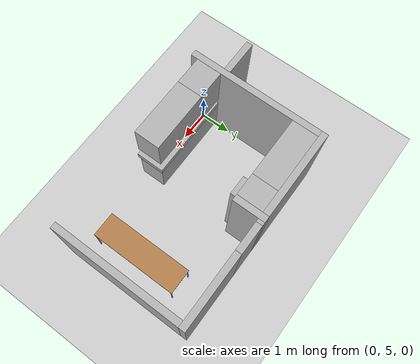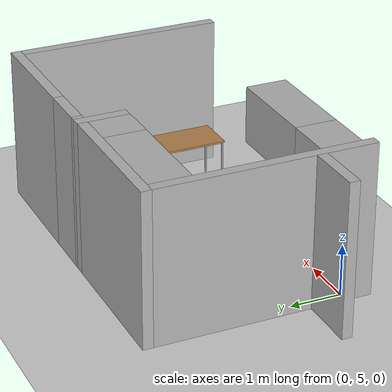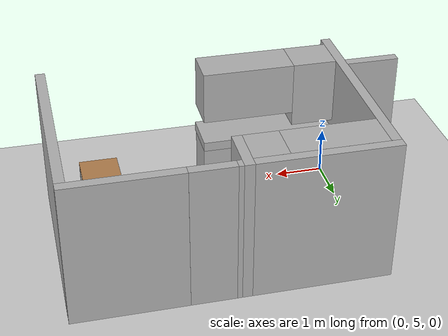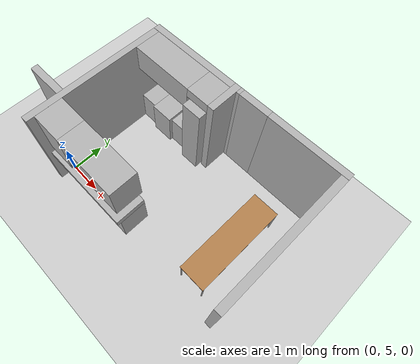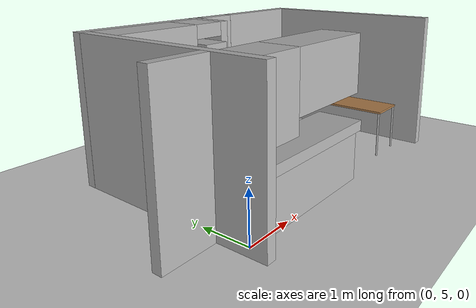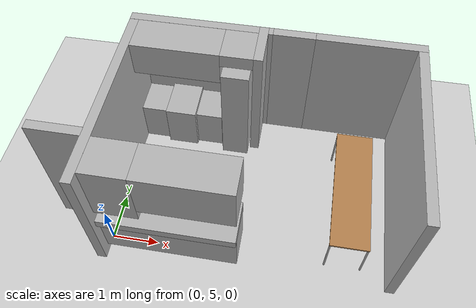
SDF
<sdf version="1.6">
 <world name="default">
  <model name="ground_plane">
   <static>1</static>
   <link name="link">
    <collision name="collision">
     <geometry><plane><normal>0 0 1</normal><size>100 100</size></plane></geometry>
     <surface><friction><ode><mu>100</mu><mu2>50</mu2></ode></friction></surface>
    </collision>
    <visual name="visual">
     <cast_shadows>0</cast_shadows>
     <geometry><plane><normal>0 0 1</normal><size>100 100</size></plane></geometry>
     <material>
      <script><uri>file://media/materials/scripts/gazebo.material</uri><name>Gazebo/Grey</name></script>
     </material>
    </visual>
   </link>
  </model>
  <model name="sean_apartment_4.0y_wall_0">
   <link name="link">
    <inertial>
     <mass>1</mass>
     <inertia>
      <ixx>0.166667</ixx>
      <ixy>0</ixy>
      <ixz>0</ixz>
      <iyy>0.166667</iyy>
      <iyz>0</iyz>
      <izz>0.166667</izz>
     </inertia>
    </inertial>
    <visual name="visual">
     <geometry><box><size>0.2 4 3</size></box></geometry>
     <material>
      <ambient>0.0 0.0 0.3 1</ambient>
      <diffuse>0.7 0.7 0.7 1</diffuse>
      <specular>0.01 0.01 0.01 1</specular>
      <emissive>0 0 0 1</emissive>
      <shader type="vertex"><normal_map>__default__</normal_map></shader>
     </material>
     <pose>0 0 1.5 0 -0 0</pose>
    </visual>
    <collision name="collision">
     <pose>0 0 1.5 0 -0 0</pose>
     <geometry><box><size>0.2 4 3</size></box></geometry>
     <surface>
      <friction>
       <ode><mu>1</mu><mu2>1</mu2><fdir1>0 0 0</fdir1><slip1>0</slip1><slip2>0</slip2></ode>
       <torsional>
        <coefficient>1</coefficient>
        <patch_radius>0</patch_radius>
        <surface_radius>0</surface_radius>
        <use_patch_radius>1</use_patch_radius>
        <ode><slip>0</slip></ode>
       </torsional>
      </friction>
      <bounce><restitution_coefficient>0</restitution_coefficient><threshold>1e+06</threshold></bounce>
      <contact>
       <collide_without_contact>0</collide_without_contact>
       <collide_without_contact_bitmask>1</collide_without_contact_bitmask>
       <collide_bitmask>1</collide_bitmask>
       <ode>
        <soft_cfm>0</soft_cfm>
        <soft_erp>0.2</soft_erp>
        <kp>1e+13</kp>
        <kd>1</kd>
        <max_vel>0.01</max_vel>
        <min_depth>0</min_depth>
       </ode>
       <bullet>
        <split_impulse>1</split_impulse>
        <split_impulse_penetration_threshold>-0.01</split_impulse_penetration_threshold>
        <soft_cfm>0</soft_cfm>
        <soft_erp>0.2</soft_erp>
        <kp>1e+13</kp>
        <kd>1</kd>
       </bullet>
      </contact>
     </surface>
    </collision>
   </link>
   <static>1</static>
   <pose>5.99872 6.69979 -4e-06 -2e-06 -9e-06 -0.001862</pose>
  </model>
  <model name="sean_apartment_2.3x_wall_1">
   <link name="link">
    <inertial>
     <mass>1</mass>
     <inertia>
      <ixx>0.166667</ixx>
      <ixy>0</ixy>
      <ixz>0</ixz>
      <iyy>0.166667</iyy>
      <iyz>0</iyz>
      <izz>0.166667</izz>
     </inertia>
    </inertial>
    <visual name="visual">
     <geometry><box><size>2.3 0.2 3</size></box></geometry>
     <material>
      <ambient>0.0 0.0 0.3 1</ambient>
      <diffuse>0.7 0.7 0.7 1</diffuse>
      <specular>0.01 0.01 0.01 1</specular>
      <emissive>0 0 0 1</emissive>
      <shader type="vertex"><normal_map>__default__</normal_map></shader>
     </material>
     <pose>0 0 1.5 0 -0 0</pose>
    </visual>
    <collision name="collision">
     <pose>0 0 1.5 0 -0 0</pose>
     <geometry><box><size>2.3 0.2 3</size></box></geometry>
     <surface>
      <friction>
       <ode><mu>1</mu><mu2>1</mu2><fdir1>0 0 0</fdir1><slip1>0</slip1><slip2>0</slip2></ode>
       <torsional>
        <coefficient>1</coefficient>
        <patch_radius>0</patch_radius>
        <surface_radius>0</surface_radius>
        <use_patch_radius>1</use_patch_radius>
        <ode><slip>0</slip></ode>
       </torsional>
      </friction>
      <bounce><restitution_coefficient>0</restitution_coefficient><threshold>1e+06</threshold></bounce>
      <contact>
       <collide_without_contact>0</collide_without_contact>
       <collide_without_contact_bitmask>1</collide_without_contact_bitmask>
       <collide_bitmask>1</collide_bitmask>
       <ode>
        <soft_cfm>0</soft_cfm>
        <soft_erp>0.2</soft_erp>
        <kp>1e+13</kp>
        <kd>1</kd>
        <max_vel>0.01</max_vel>
        <min_depth>0</min_depth>
       </ode>
       <bullet>
        <split_impulse>1</split_impulse>
        <split_impulse_penetration_threshold>-0.01</split_impulse_penetration_threshold>
        <soft_cfm>0</soft_cfm>
        <soft_erp>0.2</soft_erp>
        <kp>1e+13</kp>
        <kd>1</kd>
       </bullet>
      </contact>
     </surface>
    </collision>
   </link>
   <static>1</static>
   <pose>4.95003 8.80005 -0.000112 1e-06 9.8e-05 0.000104</pose>
  </model>
  <model name="sean_apartment_.9y_wall_0">
   <link name="link">
    <inertial>
     <mass>1</mass>
     <inertia>
      <ixx>0.166667</ixx>
      <ixy>0</ixy>
      <ixz>0</ixz>
      <iyy>0.166667</iyy>
      <iyz>0</iyz>
      <izz>0.166667</izz>
     </inertia>
    </inertial>
    <visual name="visual">
     <geometry><box><size>0.2 0.9 3</size></box></geometry>
     <material>
      <ambient>0.0 0.0 0.3 1</ambient>
      <diffuse>0.7 0.7 0.7 1</diffuse>
      <specular>0.01 0.01 0.01 1</specular>
      <emissive>0 0 0 1</emissive>
      <shader type="vertex"><normal_map>__default__</normal_map></shader>
     </material>
     <pose>0 0 1.5 0 -0 0</pose>
    </visual>
    <collision name="collision">
     <pose>0 0 1.5 0 -0 0</pose>
     <geometry><box><size>0.2 0.9 3</size></box></geometry>
     <surface>
      <friction>
       <ode><mu>1</mu><mu2>1</mu2><fdir1>0 0 0</fdir1><slip1>0</slip1><slip2>0</slip2></ode>
       <torsional>
        <coefficient>1</coefficient>
        <patch_radius>0</patch_radius>
        <surface_radius>0</surface_radius>
        <use_patch_radius>1</use_patch_radius>
        <ode><slip>0</slip></ode>
       </torsional>
      </friction>
      <bounce><restitution_coefficient>0</restitution_coefficient><threshold>1e+06</threshold></bounce>
      <contact>
       <collide_without_contact>0</collide_without_contact>
       <collide_without_contact_bitmask>1</collide_without_contact_bitmask>
       <collide_bitmask>1</collide_bitmask>
       <ode>
        <soft_cfm>0</soft_cfm>
        <soft_erp>0.2</soft_erp>
        <kp>1e+13</kp>
        <kd>1</kd>
        <max_vel>0.01</max_vel>
        <min_depth>0</min_depth>
       </ode>
       <bullet>
        <split_impulse>1</split_impulse>
        <split_impulse_penetration_threshold>-0.01</split_impulse_penetration_threshold>
        <soft_cfm>0</soft_cfm>
        <soft_erp>0.2</soft_erp>
        <kp>1e+13</kp>
        <kd>1</kd>
       </bullet>
      </contact>
     </surface>
    </collision>
   </link>
   <static>1</static>
   <pose>3.34999 8.80001 -6e-06 -1.2e-05 -0 -1.5708</pose>
  </model>
  <model name="seans_apartment_.1x_wall_0">
   <link name="link">
    <inertial>
     <mass>1</mass>
     <inertia>
      <ixx>0.166667</ixx>
      <ixy>0</ixy>
      <ixz>0</ixz>
      <iyy>0.166667</iyy>
      <iyz>0</iyz>
      <izz>0.166667</izz>
     </inertia>
    </inertial>
    <visual name="visual">
     <geometry><box><size>0.1 0.2 3</size></box></geometry>
     <material>
      <ambient>0.0 0.0 0.3 1</ambient>
      <diffuse>0.7 0.7 0.7 1</diffuse>
      <specular>0.01 0.01 0.01 1</specular>
      <emissive>0 0 0 1</emissive>
      <shader type="vertex"><normal_map>__default__</normal_map></shader>
     </material>
     <pose>0 0 1.5 0 -0 0</pose>
    </visual>
    <collision name="collision">
     <pose>0 0 1.5 0 -0 0</pose>
     <geometry><box><size>0.1 0.2 3</size></box></geometry>
     <surface>
      <friction>
       <ode><mu>1</mu><mu2>1</mu2><fdir1>0 0 0</fdir1><slip1>0</slip1><slip2>0</slip2></ode>
       <torsional>
        <coefficient>1</coefficient>
        <patch_radius>0</patch_radius>
        <surface_radius>0</surface_radius>
        <use_patch_radius>1</use_patch_radius>
        <ode><slip>0</slip></ode>
       </torsional>
      </friction>
      <bounce><restitution_coefficient>0</restitution_coefficient><threshold>1e+06</threshold></bounce>
      <contact>
       <collide_without_contact>0</collide_without_contact>
       <collide_without_contact_bitmask>1</collide_without_contact_bitmask>
       <collide_bitmask>1</collide_bitmask>
       <ode>
        <soft_cfm>0</soft_cfm>
        <soft_erp>0.2</soft_erp>
        <kp>1e+13</kp>
        <kd>1</kd>
        <max_vel>0.01</max_vel>
        <min_depth>0</min_depth>
       </ode>
       <bullet>
        <split_impulse>1</split_impulse>
        <split_impulse_penetration_threshold>-0.01</split_impulse_penetration_threshold>
        <soft_cfm>0</soft_cfm>
        <soft_erp>0.2</soft_erp>
        <kp>1e+13</kp>
        <kd>1</kd>
       </bullet>
      </contact>
     </surface>
    </collision>
   </link>
   <static>1</static>
   <pose>2.84999 8.8 0 1e-06 -0 -3e-06</pose>
  </model>
  <model name="seans_apartment_1.0y_wall_0">
   <link name="link">
    <inertial>
     <mass>1</mass>
     <inertia>
      <ixx>0.166667</ixx>
      <ixy>0</ixy>
      <ixz>0</ixz>
      <iyy>0.166667</iyy>
      <iyz>0</iyz>
      <izz>0.166667</izz>
     </inertia>
    </inertial>
    <visual name="visual">
     <geometry><box><size>0.2 1 3</size></box></geometry>
     <material>
      <ambient>0.0 0.0 0.3 1</ambient>
      <diffuse>0.7 0.7 0.7 1</diffuse>
      <specular>0.01 0.01 0.01 1</specular>
      <emissive>0 0 0 1</emissive>
      <shader type="vertex"><normal_map>__default__</normal_map></shader>
     </material>
     <pose>0 0 1.5 0 -0 0</pose>
    </visual>
    <collision name="collision">
     <pose>0 0 1.5 0 -0 0</pose>
     <geometry><box><size>0.2 1 3</size></box></geometry>
     <surface>
      <friction>
       <ode><mu>1</mu><mu2>1</mu2><fdir1>0 0 0</fdir1><slip1>0</slip1><slip2>0</slip2></ode>
       <torsional>
        <coefficient>1</coefficient>
        <patch_radius>0</patch_radius>
        <surface_radius>0</surface_radius>
        <use_patch_radius>1</use_patch_radius>
        <ode><slip>0</slip></ode>
       </torsional>
      </friction>
      <bounce><restitution_coefficient>0</restitution_coefficient><threshold>1e+06</threshold></bounce>
      <contact>
       <collide_without_contact>0</collide_without_contact>
       <collide_without_contact_bitmask>1</collide_without_contact_bitmask>
       <collide_bitmask>1</collide_bitmask>
       <ode>
        <soft_cfm>0</soft_cfm>
        <soft_erp>0.2</soft_erp>
        <kp>1e+13</kp>
        <kd>1</kd>
        <max_vel>0.01</max_vel>
        <min_depth>0</min_depth>
       </ode>
       <bullet>
        <split_impulse>1</split_impulse>
        <split_impulse_penetration_threshold>-0.01</split_impulse_penetration_threshold>
        <soft_cfm>0</soft_cfm>
        <soft_erp>0.2</soft_erp>
        <kp>1e+13</kp>
        <kd>1</kd>
       </bullet>
      </contact>
     </surface>
    </collision>
   </link>
   <static>1</static>
   <pose>2.69999 8.4 -5e-06 -1e-05 -0 -5e-06</pose>
  </model>
  <model name="sean_apartment_2.8x_wall_0">
   <link name="link">
    <inertial>
     <mass>1</mass>
     <inertia>
      <ixx>0.166667</ixx>
      <ixy>0</ixy>
      <ixz>0</ixz>
      <iyy>0.166667</iyy>
      <iyz>0</iyz>
      <izz>0.166667</izz>
     </inertia>
    </inertial>
    <visual name="visual">
     <geometry><box><size>2.8 0.2 3</size></box></geometry>
     <material>
      <ambient>0.0 0.0 0.3 1</ambient>
      <diffuse>0.7 0.7 0.7 1</diffuse>
      <specular>0.01 0.01 0.01 1</specular>
      <emissive>0 0 0 1</emissive>
      <shader type="vertex"><normal_map>__default__</normal_map></shader>
     </material>
     <pose>0 0 1.5 0 -0 0</pose>
    </visual>
    <collision name="collision">
     <pose>0 0 1.5 0 -0 0</pose>
     <geometry><box><size>2.8 0.2 3</size></box></geometry>
     <surface>
      <friction>
       <ode><mu>1</mu><mu2>1</mu2><fdir1>0 0 0</fdir1><slip1>0</slip1><slip2>0</slip2></ode>
       <torsional>
        <coefficient>1</coefficient>
        <patch_radius>0</patch_radius>
        <surface_radius>0</surface_radius>
        <use_patch_radius>1</use_patch_radius>
        <ode><slip>0</slip></ode>
       </torsional>
      </friction>
      <bounce><restitution_coefficient>0</restitution_coefficient><threshold>1e+06</threshold></bounce>
      <contact>
       <collide_without_contact>0</collide_without_contact>
       <collide_without_contact_bitmask>1</collide_without_contact_bitmask>
       <collide_bitmask>1</collide_bitmask>
       <ode>
        <soft_cfm>0</soft_cfm>
        <soft_erp>0.2</soft_erp>
        <kp>1e+13</kp>
        <kd>1</kd>
        <max_vel>0.01</max_vel>
        <min_depth>0</min_depth>
       </ode>
       <bullet>
        <split_impulse>1</split_impulse>
        <split_impulse_penetration_threshold>-0.01</split_impulse_penetration_threshold>
        <soft_cfm>0</soft_cfm>
        <soft_erp>0.2</soft_erp>
        <kp>1e+13</kp>
        <kd>1</kd>
       </bullet>
      </contact>
     </surface>
    </collision>
   </link>
   <static>1</static>
   <pose>1.19997 8.80029 0 0 0 -0.00023</pose>
  </model>
  <model name="sean_apartment_4.2y_wall_0">
   <link name="link">
    <inertial>
     <mass>1</mass>
     <inertia>
      <ixx>0.166667</ixx>
      <ixy>0</ixy>
      <ixz>0</ixz>
      <iyy>0.166667</iyy>
      <iyz>0</iyz>
      <izz>0.166667</izz>
     </inertia>
    </inertial>
    <visual name="visual">
     <geometry><box><size>0.2 4.2 3</size></box></geometry>
     <material>
      <ambient>0.0 0.0 0.3 1</ambient>
      <diffuse>0.7 0.7 0.7 1</diffuse>
      <specular>0.01 0.01 0.01 1</specular>
      <emissive>0 0 0 1</emissive>
      <shader type="vertex"><normal_map>__default__</normal_map></shader>
     </material>
     <pose>0 0 1.5 0 -0 0</pose>
    </visual>
    <collision name="collision">
     <pose>0 0 1.5 0 -0 0</pose>
     <geometry><box><size>0.2 4.2 3</size></box></geometry>
     <surface>
      <friction>
       <ode><mu>1</mu><mu2>1</mu2><fdir1>0 0 0</fdir1><slip1>0</slip1><slip2>0</slip2></ode>
       <torsional>
        <coefficient>1</coefficient>
        <patch_radius>0</patch_radius>
        <surface_radius>0</surface_radius>
        <use_patch_radius>1</use_patch_radius>
        <ode><slip>0</slip></ode>
       </torsional>
      </friction>
      <bounce><restitution_coefficient>0</restitution_coefficient><threshold>1e+06</threshold></bounce>
      <contact>
       <collide_without_contact>0</collide_without_contact>
       <collide_without_contact_bitmask>1</collide_without_contact_bitmask>
       <collide_bitmask>1</collide_bitmask>
       <ode>
        <soft_cfm>0</soft_cfm>
        <soft_erp>0.2</soft_erp>
        <kp>1e+13</kp>
        <kd>1</kd>
        <max_vel>0.01</max_vel>
        <min_depth>0</min_depth>
       </ode>
       <bullet>
        <split_impulse>1</split_impulse>
        <split_impulse_penetration_threshold>-0.01</split_impulse_penetration_threshold>
        <soft_cfm>0</soft_cfm>
        <soft_erp>0.2</soft_erp>
        <kp>1e+13</kp>
        <kd>1</kd>
       </bullet>
      </contact>
     </surface>
    </collision>
   </link>
   <static>1</static>
   <pose>-0.103967 6.60027 -4e-06 2e-06 -9e-06 -0.002424</pose>
  </model>
  <model name="sean_apartment_kitchen_cabinet_1">
   <link name="link">
    <inertial>
     <mass>1</mass>
     <inertia>
      <ixx>0.166667</ixx>
      <ixy>0</ixy>
      <ixz>0</ixz>
      <iyy>0.166667</iyy>
      <iyz>0</iyz>
      <izz>0.166667</izz>
     </inertia>
    </inertial>
    <visual name="visual">
     <geometry><box><size>0.6 0.8 1</size></box></geometry>
     <material>
      <ambient>0.6 0.6 0.0 1</ambient>
      <diffuse>0.7 0.7 0.7 1</diffuse>
      <specular>0.01 0.01 0.01 1</specular>
      <emissive>0 0 0 1</emissive>
      <shader type="vertex"><normal_map>__default__</normal_map></shader>
     </material>
     <pose>0 0 0.5 0 -0 0</pose>
    </visual>
    <collision name="collision">
     <pose>0 0 0.5 0 -0 0</pose>
     <geometry><box><size>0.6 0.8 1</size></box></geometry>
     <surface>
      <friction>
       <ode><mu>1</mu><mu2>1</mu2><fdir1>0 0 0</fdir1><slip1>0</slip1><slip2>0</slip2></ode>
       <torsional>
        <coefficient>1</coefficient>
        <patch_radius>0</patch_radius>
        <surface_radius>0</surface_radius>
        <use_patch_radius>1</use_patch_radius>
        <ode><slip>0</slip></ode>
       </torsional>
      </friction>
      <bounce><restitution_coefficient>0</restitution_coefficient><threshold>1e+06</threshold></bounce>
      <contact>
       <collide_without_contact>0</collide_without_contact>
       <collide_without_contact_bitmask>1</collide_without_contact_bitmask>
       <collide_bitmask>1</collide_bitmask>
       <ode>
        <soft_cfm>0</soft_cfm>
        <soft_erp>0.2</soft_erp>
        <kp>1e+13</kp>
        <kd>1</kd>
        <max_vel>0.01</max_vel>
        <min_depth>0</min_depth>
       </ode>
       <bullet>
        <split_impulse>1</split_impulse>
        <split_impulse_penetration_threshold>-0.01</split_impulse_penetration_threshold>
        <soft_cfm>0</soft_cfm>
        <soft_erp>0.2</soft_erp>
        <kp>1e+13</kp>
        <kd>1</kd>
       </bullet>
      </contact>
     </surface>
    </collision>
   </link>
   <static>1</static>
   <pose>0.300745 8.2996 0 0 0 -0.001191</pose>
  </model>
  <model name="sean_apartment_kitchen_cabinet_2">
   <link name="link">
    <inertial>
     <mass>1</mass>
     <inertia>
      <ixx>0.166667</ixx>
      <ixy>0</ixy>
      <ixz>0</ixz>
      <iyy>0.166667</iyy>
      <iyz>0</iyz>
      <izz>0.166667</izz>
     </inertia>
    </inertial>
    <visual name="visual">
     <geometry><box><size>0.6 0.8 1</size></box></geometry>
     <material>
      <ambient>0.6 0.6 0.0 1</ambient>
      <diffuse>0.7 0.7 0.7 1</diffuse>
      <specular>0.01 0.01 0.01 1</specular>
      <emissive>0 0 0 1</emissive>
      <shader type="vertex"><normal_map>__default__</normal_map></shader>
     </material>
     <pose>0 0 0.5 0 -0 0</pose>
    </visual>
    <collision name="collision">
     <pose>0 0 0.5 0 -0 0</pose>
     <geometry><box><size>0.6 0.8 1</size></box></geometry>
     <surface>
      <friction>
       <ode><mu>1</mu><mu2>1</mu2><fdir1>0 0 0</fdir1><slip1>0</slip1><slip2>0</slip2></ode>
       <torsional>
        <coefficient>1</coefficient>
        <patch_radius>0</patch_radius>
        <surface_radius>0</surface_radius>
        <use_patch_radius>1</use_patch_radius>
        <ode><slip>0</slip></ode>
       </torsional>
      </friction>
      <bounce><restitution_coefficient>0</restitution_coefficient><threshold>1e+06</threshold></bounce>
      <contact>
       <collide_without_contact>0</collide_without_contact>
       <collide_without_contact_bitmask>1</collide_without_contact_bitmask>
       <collide_bitmask>1</collide_bitmask>
       <ode>
        <soft_cfm>0</soft_cfm>
        <soft_erp>0.2</soft_erp>
        <kp>1e+13</kp>
        <kd>1</kd>
        <max_vel>0.01</max_vel>
        <min_depth>0</min_depth>
       </ode>
       <bullet>
        <split_impulse>1</split_impulse>
        <split_impulse_penetration_threshold>-0.01</split_impulse_penetration_threshold>
        <soft_cfm>0</soft_cfm>
        <soft_erp>0.2</soft_erp>
        <kp>1e+13</kp>
        <kd>1</kd>
       </bullet>
      </contact>
     </surface>
    </collision>
   </link>
   <static>1</static>
   <pose>1.60077 8.29977 0 0 0 -0.001212</pose>
  </model>
  <model name="sean_apartment_stovetop_0">
   <link name="link">
    <inertial>
     <mass>1</mass>
     <inertia>
      <ixx>0.166667</ixx>
      <ixy>0</ixy>
      <ixz>0</ixz>
      <iyy>0.166667</iyy>
      <iyz>0</iyz>
      <izz>0.166667</izz>
     </inertia>
    </inertial>
    <visual name="visual">
     <geometry><box><size>0.7 0.9 1.1</size></box></geometry>
     <material>
      <ambient>0.1 0.1 0.1 1</ambient>
      <diffuse>0.7 0.7 0.7 1</diffuse>
      <specular>0.01 0.01 0.01 1</specular>
      <emissive>0 0 0 1</emissive>
      <shader type="vertex"><normal_map>__default__</normal_map></shader>
     </material>
     <pose>0 0 0.55 0 -0 0</pose>
    </visual>
    <collision name="collision">
     <pose>0 0 0.55 0 -0 0</pose>
     <geometry><box><size>0.7 0.9 1.1</size></box></geometry>
     <surface>
      <friction>
       <ode><mu>1</mu><mu2>1</mu2><fdir1>0 0 0</fdir1><slip1>0</slip1><slip2>0</slip2></ode>
       <torsional>
        <coefficient>1</coefficient>
        <patch_radius>0</patch_radius>
        <surface_radius>0</surface_radius>
        <use_patch_radius>1</use_patch_radius>
        <ode><slip>0</slip></ode>
       </torsional>
      </friction>
      <bounce><restitution_coefficient>0</restitution_coefficient><threshold>1e+06</threshold></bounce>
      <contact>
       <collide_without_contact>0</collide_without_contact>
       <collide_without_contact_bitmask>1</collide_without_contact_bitmask>
       <collide_bitmask>1</collide_bitmask>
       <ode>
        <soft_cfm>0</soft_cfm>
        <soft_erp>0.2</soft_erp>
        <kp>1e+13</kp>
        <kd>1</kd>
        <max_vel>0.01</max_vel>
        <min_depth>0</min_depth>
       </ode>
       <bullet>
        <split_impulse>1</split_impulse>
        <split_impulse_penetration_threshold>-0.01</split_impulse_penetration_threshold>
        <soft_cfm>0</soft_cfm>
        <soft_erp>0.2</soft_erp>
        <kp>1e+13</kp>
        <kd>1</kd>
       </bullet>
      </contact>
     </surface>
    </collision>
   </link>
   <static>1</static>
   <pose>0.950696 8.24981 0 0 0 -0.001193</pose>
  </model>
  <model name="sean_apartment_fridge">
   <link name="link">
    <inertial>
     <mass>1</mass>
     <inertia>
      <ixx>0.166667</ixx>
      <ixy>0</ixy>
      <ixz>0</ixz>
      <iyy>0.166667</iyy>
      <iyz>0</iyz>
      <izz>0.166667</izz>
     </inertia>
    </inertial>
    <visual name="visual">
     <geometry><box><size>0.6 1 2.6</size></box></geometry>
     <material>
      <ambient>0.6 0.6 0.6 1</ambient>
      <diffuse>0.7 0.7 0.7 1</diffuse>
      <specular>0.01 0.01 0.01 1</specular>
      <emissive>0 0 0 1</emissive>
      <shader type="vertex"><normal_map>__default__</normal_map></shader>
     </material>
     <pose>0 0 1.3 0 -0 0</pose>
    </visual>
    <collision name="collision">
     <pose>0 0 1.3 0 -0 0</pose>
     <geometry><box><size>0.6 1 2.6</size></box></geometry>
     <surface>
      <friction>
       <ode><mu>1</mu><mu2>1</mu2><fdir1>0 0 0</fdir1><slip1>0</slip1><slip2>0</slip2></ode>
       <torsional>
        <coefficient>1</coefficient>
        <patch_radius>0</patch_radius>
        <surface_radius>0</surface_radius>
        <use_patch_radius>1</use_patch_radius>
        <ode><slip>0</slip></ode>
       </torsional>
      </friction>
      <bounce><restitution_coefficient>0</restitution_coefficient><threshold>1e+06</threshold></bounce>
      <contact>
       <collide_without_contact>0</collide_without_contact>
       <collide_without_contact_bitmask>1</collide_without_contact_bitmask>
       <collide_bitmask>1</collide_bitmask>
       <ode>
        <soft_cfm>0</soft_cfm>
        <soft_erp>0.2</soft_erp>
        <kp>1e+13</kp>
        <kd>1</kd>
        <max_vel>0.01</max_vel>
        <min_depth>0</min_depth>
       </ode>
       <bullet>
        <split_impulse>1</split_impulse>
        <split_impulse_penetration_threshold>-0.01</split_impulse_penetration_threshold>
        <soft_cfm>0</soft_cfm>
        <soft_erp>0.2</soft_erp>
        <kp>1e+13</kp>
        <kd>1</kd>
       </bullet>
      </contact>
     </surface>
    </collision>
   </link>
   <static>1</static>
   <pose>2.25199 8.19994 0 0 0 -5.1e-05</pose>
  </model>
  <model name="sean_apartment_1.1x_wall_1">
   <link name="link">
    <inertial>
     <mass>1</mass>
     <inertia>
      <ixx>0.166667</ixx>
      <ixy>0</ixy>
      <ixz>0</ixz>
      <iyy>0.166667</iyy>
      <iyz>0</iyz>
      <izz>0.166667</izz>
     </inertia>
    </inertial>
    <visual name="visual">
     <geometry><box><size>1.1 0.2 3</size></box></geometry>
     <material>
      <ambient>0.0 0.0 0.3 1</ambient>
      <diffuse>0.7 0.7 0.7 1</diffuse>
      <specular>0.01 0.01 0.01 1</specular>
      <emissive>0 0 0 1</emissive>
      <shader type="vertex"><normal_map>__default__</normal_map></shader>
     </material>
     <pose>0 0 1.5 0 -0 0</pose>
    </visual>
    <collision name="collision">
     <pose>0 0 1.5 0 -0 0</pose>
     <geometry><box><size>1.1 0.2 3</size></box></geometry>
     <surface>
      <friction>
       <ode><mu>1</mu><mu2>1</mu2><fdir1>0 0 0</fdir1><slip1>0</slip1><slip2>0</slip2></ode>
       <torsional>
        <coefficient>1</coefficient>
        <patch_radius>0</patch_radius>
        <surface_radius>0</surface_radius>
        <use_patch_radius>1</use_patch_radius>
        <ode><slip>0</slip></ode>
       </torsional>
      </friction>
      <bounce><restitution_coefficient>0</restitution_coefficient><threshold>1e+06</threshold></bounce>
      <contact>
       <collide_without_contact>0</collide_without_contact>
       <collide_without_contact_bitmask>1</collide_without_contact_bitmask>
       <collide_bitmask>1</collide_bitmask>
       <ode>
        <soft_cfm>0</soft_cfm>
        <soft_erp>0.2</soft_erp>
        <kp>1e+13</kp>
        <kd>1</kd>
        <max_vel>0.01</max_vel>
        <min_depth>0</min_depth>
       </ode>
       <bullet>
        <split_impulse>1</split_impulse>
        <split_impulse_penetration_threshold>-0.01</split_impulse_penetration_threshold>
        <soft_cfm>0</soft_cfm>
        <soft_erp>0.2</soft_erp>
        <kp>1e+13</kp>
        <kd>1</kd>
       </bullet>
      </contact>
     </surface>
    </collision>
   </link>
   <static>1</static>
   <pose>-0.75 5.6 0 0 8e-06 0</pose>
  </model>
  <model name="seans_apartment_table_0">
   <link name="link">
    <inertial>
     <inertia><ixx>1</ixx><ixy>0</ixy><ixz>0</ixz><iyy>1</iyy><iyz>0</iyz><izz>1</izz></inertia>
     <mass>1</mass>
    </inertial>
    <visual name="front_left_leg">
     <pose>1.36 0.38 0.5 0 -0 0</pose>
     <geometry><cylinder><radius>0.02</radius><length>1</length></cylinder></geometry>
     <material>
      <script><uri>file://media/materials/scripts/gazebo.material</uri><name>Gazebo/Grey</name></script>
      <ambient>0.3 0.3 0.3 1</ambient>
      <diffuse>0.7 0.7 0.7 1</diffuse>
      <specular>0.01 0.01 0.01 1</specular>
      <emissive>0 0 0 1</emissive>
      <shader type="vertex"><normal_map>__default__</normal_map></shader>
     </material>
    </visual>
    <visual name="visual1">
     <pose>0 0 1 0 -0 0</pose>
     <geometry><box><size>2.8 0.8 0.04</size></box></geometry>
     <material>
      <script><uri>file://media/materials/scripts/gazebo.material</uri><name>Gazebo/Wood</name></script>
      <ambient>1 1 1 1</ambient>
      <diffuse>1 1 1 1</diffuse>
      <specular>0.2 0.2 0.2 1</specular>
      <emissive>0 0 0 1</emissive>
      <shader type="vertex"><normal_map>__default__</normal_map></shader>
     </material>
    </visual>
    <visual name="front_right_leg">
     <pose>1.36 -0.38 0.5 0 -0 0</pose>
     <geometry><cylinder><radius>0.02</radius><length>1</length></cylinder></geometry>
     <material>
      <script><uri>file://media/materials/scripts/gazebo.material</uri><name>Gazebo/Grey</name></script>
      <ambient>0.3 0.3 0.3 1</ambient>
      <diffuse>0.7 0.7 0.7 1</diffuse>
      <specular>0.01 0.01 0.01 1</specular>
      <emissive>0 0 0 1</emissive>
      <shader type="vertex"><normal_map>__default__</normal_map></shader>
     </material>
    </visual>
    <visual name="back_right_leg">
     <pose>-1.36 -0.38 0.5 0 -0 0</pose>
     <geometry><cylinder><radius>0.02</radius><length>1</length></cylinder></geometry>
     <material>
      <script><uri>file://media/materials/scripts/gazebo.material</uri><name>Gazebo/Grey</name></script>
      <ambient>0.3 0.3 0.3 1</ambient>
      <diffuse>0.7 0.7 0.7 1</diffuse>
      <specular>0.01 0.01 0.01 1</specular>
      <emissive>0 0 0 1</emissive>
      <shader type="vertex"><normal_map>__default__</normal_map></shader>
     </material>
    </visual>
    <visual name="back_left_leg">
     <pose>-1.36 0.38 0.5 0 -0 0</pose>
     <geometry><cylinder><radius>0.02</radius><length>1</length></cylinder></geometry>
     <material>
      <script><uri>file://media/materials/scripts/gazebo.material</uri><name>Gazebo/Grey</name></script>
      <ambient>0.3 0.3 0.3 1</ambient>
      <diffuse>0.7 0.7 0.7 1</diffuse>
      <specular>0.01 0.01 0.01 1</specular>
      <emissive>0 0 0 1</emissive>
      <shader type="vertex"><normal_map>__default__</normal_map></shader>
     </material>
    </visual>
    <collision name="surface">
     <pose>0 0 1 0 -0 0</pose>
     <geometry><box><size>2.8 0.8 0.04</size></box></geometry>
     <surface>
      <friction>
       <ode><mu>0.6</mu><mu2>0.6</mu2><fdir1>0 0 0</fdir1><slip1>0</slip1><slip2>0</slip2></ode>
       <torsional>
        <coefficient>1</coefficient>
        <patch_radius>0</patch_radius>
        <surface_radius>0</surface_radius>
        <use_patch_radius>1</use_patch_radius>
        <ode><slip>0</slip></ode>
       </torsional>
      </friction>
      <bounce><restitution_coefficient>0</restitution_coefficient><threshold>1e+06</threshold></bounce>
      <contact>
       <collide_without_contact>0</collide_without_contact>
       <collide_without_contact_bitmask>1</collide_without_contact_bitmask>
       <collide_bitmask>1</collide_bitmask>
       <ode>
        <soft_cfm>0</soft_cfm>
        <soft_erp>0.2</soft_erp>
        <kp>1e+13</kp>
        <kd>1</kd>
        <max_vel>0.01</max_vel>
        <min_depth>0</min_depth>
       </ode>
       <bullet>
        <split_impulse>1</split_impulse>
        <split_impulse_penetration_threshold>-0.01</split_impulse_penetration_threshold>
        <soft_cfm>0</soft_cfm>
        <soft_erp>0.2</soft_erp>
        <kp>1e+13</kp>
        <kd>1</kd>
       </bullet>
      </contact>
     </surface>
    </collision>
    <collision name="front_left_leg">
     <pose>1.36 0.38 0.5 0 -0 0</pose>
     <geometry><cylinder><radius>0.02</radius><length>1</length></cylinder></geometry>
     <surface>
      <friction>
       <ode><mu>1</mu><mu2>1</mu2><fdir1>0 0 0</fdir1><slip1>0</slip1><slip2>0</slip2></ode>
       <torsional>
        <coefficient>1</coefficient>
        <patch_radius>0</patch_radius>
        <surface_radius>0</surface_radius>
        <use_patch_radius>1</use_patch_radius>
        <ode><slip>0</slip></ode>
       </torsional>
      </friction>
      <bounce><restitution_coefficient>0</restitution_coefficient><threshold>1e+06</threshold></bounce>
      <contact>
       <collide_without_contact>0</collide_without_contact>
       <collide_without_contact_bitmask>1</collide_without_contact_bitmask>
       <collide_bitmask>1</collide_bitmask>
       <ode>
        <soft_cfm>0</soft_cfm>
        <soft_erp>0.2</soft_erp>
        <kp>1e+13</kp>
        <kd>1</kd>
        <max_vel>0.01</max_vel>
        <min_depth>0</min_depth>
       </ode>
       <bullet>
        <split_impulse>1</split_impulse>
        <split_impulse_penetration_threshold>-0.01</split_impulse_penetration_threshold>
        <soft_cfm>0</soft_cfm>
        <soft_erp>0.2</soft_erp>
        <kp>1e+13</kp>
        <kd>1</kd>
       </bullet>
      </contact>
     </surface>
    </collision>
    <collision name="front_right_leg">
     <pose>1.36 -0.38 0.5 0 -0 0</pose>
     <geometry><cylinder><radius>0.02</radius><length>1</length></cylinder></geometry>
     <surface>
      <friction>
       <ode><mu>1</mu><mu2>1</mu2><fdir1>0 0 0</fdir1><slip1>0</slip1><slip2>0</slip2></ode>
       <torsional>
        <coefficient>1</coefficient>
        <patch_radius>0</patch_radius>
        <surface_radius>0</surface_radius>
        <use_patch_radius>1</use_patch_radius>
        <ode><slip>0</slip></ode>
       </torsional>
      </friction>
      <bounce><restitution_coefficient>0</restitution_coefficient><threshold>1e+06</threshold></bounce>
      <contact>
       <collide_without_contact>0</collide_without_contact>
       <collide_without_contact_bitmask>1</collide_without_contact_bitmask>
       <collide_bitmask>1</collide_bitmask>
       <ode>
        <soft_cfm>0</soft_cfm>
        <soft_erp>0.2</soft_erp>
        <kp>1e+13</kp>
        <kd>1</kd>
        <max_vel>0.01</max_vel>
        <min_depth>0</min_depth>
       </ode>
       <bullet>
        <split_impulse>1</split_impulse>
        <split_impulse_penetration_threshold>-0.01</split_impulse_penetration_threshold>
        <soft_cfm>0</soft_cfm>
        <soft_erp>0.2</soft_erp>
        <kp>1e+13</kp>
        <kd>1</kd>
       </bullet>
      </contact>
     </surface>
    </collision>
    <collision name="back_right_leg">
     <pose>-1.36 -0.38 0.5 0 -0 0</pose>
     <geometry><cylinder><radius>0.02</radius><length>1</length></cylinder></geometry>
     <surface>
      <friction>
       <ode><mu>1</mu><mu2>1</mu2><fdir1>0 0 0</fdir1><slip1>0</slip1><slip2>0</slip2></ode>
       <torsional>
        <coefficient>1</coefficient>
        <patch_radius>0</patch_radius>
        <surface_radius>0</surface_radius>
        <use_patch_radius>1</use_patch_radius>
        <ode><slip>0</slip></ode>
       </torsional>
      </friction>
      <bounce><restitution_coefficient>0</restitution_coefficient><threshold>1e+06</threshold></bounce>
      <contact>
       <collide_without_contact>0</collide_without_contact>
       <collide_without_contact_bitmask>1</collide_without_contact_bitmask>
       <collide_bitmask>1</collide_bitmask>
       <ode>
        <soft_cfm>0</soft_cfm>
        <soft_erp>0.2</soft_erp>
        <kp>1e+13</kp>
        <kd>1</kd>
        <max_vel>0.01</max_vel>
        <min_depth>0</min_depth>
       </ode>
       <bullet>
        <split_impulse>1</split_impulse>
        <split_impulse_penetration_threshold>-0.01</split_impulse_penetration_threshold>
        <soft_cfm>0</soft_cfm>
        <soft_erp>0.2</soft_erp>
        <kp>1e+13</kp>
        <kd>1</kd>
       </bullet>
      </contact>
     </surface>
    </collision>
    <collision name="back_left_leg">
     <pose>-1.36 0.38 0.5 0 -0 0</pose>
     <geometry><cylinder><radius>0.02</radius><length>1</length></cylinder></geometry>
     <surface>
      <friction>
       <ode><mu>1</mu><mu2>1</mu2><fdir1>0 0 0</fdir1><slip1>0</slip1><slip2>0</slip2></ode>
       <torsional>
        <coefficient>1</coefficient>
        <patch_radius>0</patch_radius>
        <surface_radius>0</surface_radius>
        <use_patch_radius>1</use_patch_radius>
        <ode><slip>0</slip></ode>
       </torsional>
      </friction>
      <bounce><restitution_coefficient>0</restitution_coefficient><threshold>1e+06</threshold></bounce>
      <contact>
       <collide_without_contact>0</collide_without_contact>
       <collide_without_contact_bitmask>1</collide_without_contact_bitmask>
       <collide_bitmask>1</collide_bitmask>
       <ode>
        <soft_cfm>0</soft_cfm>
        <soft_erp>0.2</soft_erp>
        <kp>1e+13</kp>
        <kd>1</kd>
        <max_vel>0.01</max_vel>
        <min_depth>0</min_depth>
       </ode>
       <bullet>
        <split_impulse>1</split_impulse>
        <split_impulse_penetration_threshold>-0.01</split_impulse_penetration_threshold>
        <soft_cfm>0</soft_cfm>
        <soft_erp>0.2</soft_erp>
        <kp>1e+13</kp>
        <kd>1</kd>
       </bullet>
      </contact>
     </surface>
    </collision>
   </link>
   <static>1</static>
   <pose>4.99747 6.46925 -8e-06 0 0 -1.5708</pose>
  </model>
  <model name="sean_kitchen_top">
   <link name="link">
    <inertial>
     <mass>1</mass>
     <inertia>
      <ixx>0.166667</ixx>
      <ixy>0</ixy>
      <ixz>0</ixz>
      <iyy>0.166667</iyy>
      <iyz>0</iyz>
      <izz>0.166667</izz>
     </inertia>
    </inertial>
    <visual name="ModelPreview_17::link::visual_1">
     <geometry><box><size>0.7 0.3 0.8</size></box></geometry>
     <material>
      <ambient>0.6 0.6 0.0 1</ambient>
      <diffuse>0.7 0.7 0.7 1</diffuse>
      <specular>0.01 0.01 0.01 1</specular>
      <emissive>0 0 0 1</emissive>
      <shader type="vertex"><normal_map>__default__</normal_map></shader>
     </material>
     <pose>1.3 0.25 0 0 -0 0</pose>
    </visual>
    <visual name="visual">
     <geometry><box><size>1.9 0.8 0.8</size></box></geometry>
     <material>
      <ambient>0.6 0.6 0.0 1</ambient>
      <diffuse>0.7 0.7 0.7 1</diffuse>
      <specular>0.01 0.01 0.01 1</specular>
      <emissive>0 0 0 1</emissive>
      <shader type="vertex"><normal_map>__default__</normal_map></shader>
     </material>
    </visual>
    <collision name="collision_1">
     <pose>1.3 0.25 0 0 -0 0</pose>
     <geometry><box><size>0.7 0.3 0.8</size></box></geometry>
     <surface>
      <friction>
       <ode><mu>1</mu><mu2>1</mu2><fdir1>0 0 0</fdir1><slip1>0</slip1><slip2>0</slip2></ode>
       <torsional>
        <coefficient>1</coefficient>
        <patch_radius>0</patch_radius>
        <surface_radius>0</surface_radius>
        <use_patch_radius>1</use_patch_radius>
        <ode><slip>0</slip></ode>
       </torsional>
      </friction>
      <bounce><restitution_coefficient>0</restitution_coefficient><threshold>1e+06</threshold></bounce>
      <contact>
       <collide_without_contact>0</collide_without_contact>
       <collide_without_contact_bitmask>1</collide_without_contact_bitmask>
       <collide_bitmask>1</collide_bitmask>
       <ode>
        <soft_cfm>0</soft_cfm>
        <soft_erp>0.2</soft_erp>
        <kp>1e+13</kp>
        <kd>1</kd>
        <max_vel>0.01</max_vel>
        <min_depth>0</min_depth>
       </ode>
       <bullet>
        <split_impulse>1</split_impulse>
        <split_impulse_penetration_threshold>-0.01</split_impulse_penetration_threshold>
        <soft_cfm>0</soft_cfm>
        <soft_erp>0.2</soft_erp>
        <kp>1e+13</kp>
        <kd>1</kd>
       </bullet>
      </contact>
     </surface>
    </collision>
    <collision name="collision">
     <geometry><box><size>1.9 0.8 0.8</size></box></geometry>
     <surface>
      <friction>
       <ode><mu>1</mu><mu2>1</mu2><fdir1>0 0 0</fdir1><slip1>0</slip1><slip2>0</slip2></ode>
       <torsional>
        <coefficient>1</coefficient>
        <patch_radius>0</patch_radius>
        <surface_radius>0</surface_radius>
        <use_patch_radius>1</use_patch_radius>
        <ode><slip>0</slip></ode>
       </torsional>
      </friction>
      <bounce><restitution_coefficient>0</restitution_coefficient><threshold>1e+06</threshold></bounce>
      <contact>
       <collide_without_contact>0</collide_without_contact>
       <collide_without_contact_bitmask>1</collide_without_contact_bitmask>
       <collide_bitmask>1</collide_bitmask>
       <ode>
        <soft_cfm>0</soft_cfm>
        <soft_erp>0.2</soft_erp>
        <kp>1e+13</kp>
        <kd>1</kd>
        <max_vel>0.01</max_vel>
        <min_depth>0</min_depth>
       </ode>
       <bullet>
        <split_impulse>1</split_impulse>
        <split_impulse_penetration_threshold>-0.01</split_impulse_penetration_threshold>
        <soft_cfm>0</soft_cfm>
        <soft_erp>0.2</soft_erp>
        <kp>1e+13</kp>
        <kd>1</kd>
       </bullet>
      </contact>
     </surface>
    </collision>
   </link>
   <static>1</static>
   <pose>0.95 8.3 2.6 1.5708 -0 0</pose>
  </model>
  <model name="sean_sink_top_0">
   <link name="link_0">
    <pose>0.25428 -0.96147 0 0 -0 0</pose>
    <inertial>
     <mass>1</mass>
     <inertia>
      <ixx>0.166667</ixx>
      <ixy>0</ixy>
      <ixz>0</ixz>
      <iyy>0.166667</iyy>
      <iyz>0</iyz>
      <izz>0.166667</izz>
     </inertia>
    </inertial>
    <visual name="ModelPreview_26::link_0::visual_1">
     <pose>1.4 0.15 0 0 -0 0</pose>
     <geometry><box><size>1.9 1.1 0.8</size></box></geometry>
     <material>
      <lighting>1</lighting>
      <ambient>0.6 0.6 0.0 1</ambient>
      <diffuse>0.7 0.7 0.7 1</diffuse>
      <specular>0.01 0.01 0.01 1</specular>
      <emissive>0 0 0 1</emissive>
      <shader type="vertex"><normal_map>__default__</normal_map></shader>
     </material>
    </visual>
    <visual name="visual">
     <geometry><box><size>0.9 1.4 0.8</size></box></geometry>
     <material>
      <lighting>1</lighting>
      <ambient>0.6 0.6 0.0 1</ambient>
      <diffuse>0.7 0.7 0.7 1</diffuse>
      <specular>0.01 0.01 0.01 1</specular>
      <emissive>0 0 0 1</emissive>
      <shader type="vertex"><normal_map>__default__</normal_map></shader>
     </material>
    </visual>
    <collision name="collision">
     <geometry><box><size>0.9 1.4 0.8</size></box></geometry>
     <surface>
      <friction>
       <ode><mu>1</mu><mu2>1</mu2><fdir1>0 0 0</fdir1><slip1>0</slip1><slip2>0</slip2></ode>
       <torsional>
        <coefficient>1</coefficient>
        <patch_radius>0</patch_radius>
        <surface_radius>0</surface_radius>
        <use_patch_radius>1</use_patch_radius>
        <ode><slip>0</slip></ode>
       </torsional>
      </friction>
      <bounce><restitution_coefficient>0</restitution_coefficient><threshold>1e+06</threshold></bounce>
      <contact>
       <collide_without_contact>0</collide_without_contact>
       <collide_without_contact_bitmask>1</collide_without_contact_bitmask>
       <collide_bitmask>1</collide_bitmask>
       <ode>
        <soft_cfm>0</soft_cfm>
        <soft_erp>0.2</soft_erp>
        <kp>1e+13</kp>
        <kd>1</kd>
        <max_vel>0.01</max_vel>
        <min_depth>0</min_depth>
       </ode>
       <bullet>
        <split_impulse>1</split_impulse>
        <split_impulse_penetration_threshold>-0.01</split_impulse_penetration_threshold>
        <soft_cfm>0</soft_cfm>
        <soft_erp>0.2</soft_erp>
        <kp>1e+13</kp>
        <kd>1</kd>
       </bullet>
      </contact>
     </surface>
    </collision>
    <collision name="collision_1">
     <pose>1.4 0.15 0 0 -0 0</pose>
     <geometry><box><size>1.9 1.1 0.8</size></box></geometry>
     <surface>
      <friction>
       <ode><mu>1</mu><mu2>1</mu2><fdir1>0 0 0</fdir1><slip1>0</slip1><slip2>0</slip2></ode>
       <torsional>
        <coefficient>1</coefficient>
        <patch_radius>0</patch_radius>
        <surface_radius>0</surface_radius>
        <use_patch_radius>1</use_patch_radius>
        <ode><slip>0</slip></ode>
       </torsional>
      </friction>
      <bounce><restitution_coefficient>0</restitution_coefficient><threshold>1e+06</threshold></bounce>
      <contact>
       <collide_without_contact>0</collide_without_contact>
       <collide_without_contact_bitmask>1</collide_without_contact_bitmask>
       <collide_bitmask>1</collide_bitmask>
       <ode>
        <soft_cfm>0</soft_cfm>
        <soft_erp>0.2</soft_erp>
        <kp>1e+13</kp>
        <kd>1</kd>
        <max_vel>0.01</max_vel>
        <min_depth>0</min_depth>
       </ode>
       <bullet>
        <split_impulse>1</split_impulse>
        <split_impulse_penetration_threshold>-0.01</split_impulse_penetration_threshold>
        <soft_cfm>0</soft_cfm>
        <soft_erp>0.2</soft_erp>
        <kp>1e+13</kp>
        <kd>1</kd>
       </bullet>
      </contact>
     </surface>
    </collision>
   </link>
   <static>1</static>
   <pose>0.187432 5.1262 3.261 1.5708 -0 0</pose>
  </model>
  <model name="sean_counter_bottom_0">
   <link name="link">
    <inertial>
     <mass>1</mass>
     <inertia>
      <ixx>0.166667</ixx>
      <ixy>0</ixy>
      <ixz>0</ixz>
      <iyy>0.166667</iyy>
      <iyz>0</iyz>
      <izz>0.166667</izz>
     </inertia>
    </inertial>
    <visual name="visual">
     <geometry><box><size>2.8 0.8 1</size></box></geometry>
     <material>
      <ambient>0.6 0.6 0.0 1</ambient>
      <diffuse>0.7 0.7 0.7 1</diffuse>
      <specular>0.01 0.01 0.01 1</specular>
      <emissive>0 0 0 1</emissive>
      <shader type="vertex"><normal_map>__default__</normal_map></shader>
     </material>
    </visual>
    <collision name="collision">
     <geometry><box><size>2.8 0.8 1</size></box></geometry>
     <surface>
      <friction>
       <ode><mu>1</mu><mu2>1</mu2><fdir1>0 0 0</fdir1><slip1>0</slip1><slip2>0</slip2></ode>
       <torsional>
        <coefficient>1</coefficient>
        <patch_radius>0</patch_radius>
        <surface_radius>0</surface_radius>
        <use_patch_radius>1</use_patch_radius>
        <ode><slip>0</slip></ode>
       </torsional>
      </friction>
      <bounce><restitution_coefficient>0</restitution_coefficient><threshold>1e+06</threshold></bounce>
      <contact>
       <collide_without_contact>0</collide_without_contact>
       <collide_without_contact_bitmask>1</collide_without_contact_bitmask>
       <collide_bitmask>1</collide_bitmask>
       <ode>
        <soft_cfm>0</soft_cfm>
        <soft_erp>0.2</soft_erp>
        <kp>1e+13</kp>
        <kd>1</kd>
        <max_vel>0.01</max_vel>
        <min_depth>0</min_depth>
       </ode>
       <bullet>
        <split_impulse>1</split_impulse>
        <split_impulse_penetration_threshold>-0.01</split_impulse_penetration_threshold>
        <soft_cfm>0</soft_cfm>
        <soft_erp>0.2</soft_erp>
        <kp>1e+13</kp>
        <kd>1</kd>
       </bullet>
      </contact>
     </surface>
    </collision>
   </link>
   <static>1</static>
   <pose>1.39171 5.1262 0.7 3.14159 -0 0</pose>
  </model>
  <model name="seans_apartment_countertop">
   <link name="link">
    <pose>-0.131679 -1.51575 0 0 -0 0</pose>
    <inertial>
     <mass>1</mass>
     <inertia>
      <ixx>0.166667</ixx>
      <ixy>0</ixy>
      <ixz>0</ixz>
      <iyy>0.166667</iyy>
      <iyz>0</iyz>
      <izz>0.166667</izz>
     </inertia>
    </inertial>
    <visual name="visual">
     <geometry><box><size>2.8 0.9 0.2</size></box></geometry>
     <material>
      <ambient>0.2 0.2 0.2 1</ambient>
      <diffuse>0.7 0.7 0.7 1</diffuse>
      <specular>0.01 0.01 0.01 1</specular>
      <emissive>0 0 0 1</emissive>
      <shader type="vertex"><normal_map>__default__</normal_map></shader>
     </material>
    </visual>
    <collision name="collision">
     <geometry><box><size>2.8 0.9 0.2</size></box></geometry>
     <surface>
      <friction>
       <ode><mu>1</mu><mu2>1</mu2><fdir1>0 0 0</fdir1><slip1>0</slip1><slip2>0</slip2></ode>
       <torsional>
        <coefficient>1</coefficient>
        <patch_radius>0</patch_radius>
        <surface_radius>0</surface_radius>
        <use_patch_radius>1</use_patch_radius>
        <ode><slip>0</slip></ode>
       </torsional>
      </friction>
      <bounce><restitution_coefficient>0</restitution_coefficient><threshold>1e+06</threshold></bounce>
      <contact>
       <collide_without_contact>0</collide_without_contact>
       <collide_without_contact_bitmask>1</collide_without_contact_bitmask>
       <collide_bitmask>1</collide_bitmask>
       <ode>
        <soft_cfm>0</soft_cfm>
        <soft_erp>0.2</soft_erp>
        <kp>1e+13</kp>
        <kd>1</kd>
        <max_vel>0.01</max_vel>
        <min_depth>0</min_depth>
       </ode>
       <bullet>
        <split_impulse>1</split_impulse>
        <split_impulse_penetration_threshold>-0.01</split_impulse_penetration_threshold>
        <soft_cfm>0</soft_cfm>
        <soft_erp>0.2</soft_erp>
        <kp>1e+13</kp>
        <kd>1</kd>
       </bullet>
      </contact>
     </surface>
    </collision>
   </link>
   <static>1</static>
   <pose>1.52339 6.59195 1.3 0 -0 0</pose>
  </model>
 </world>
</sdf>
